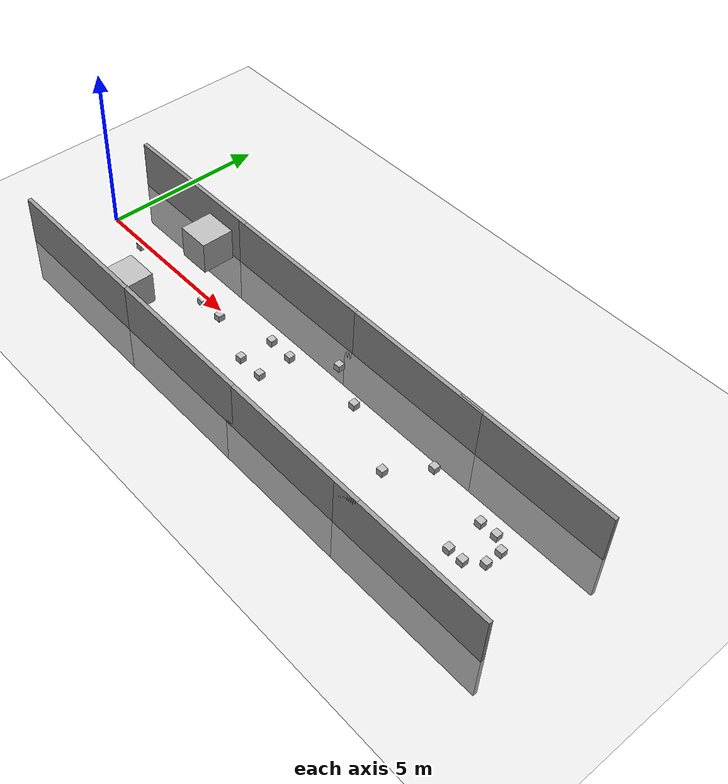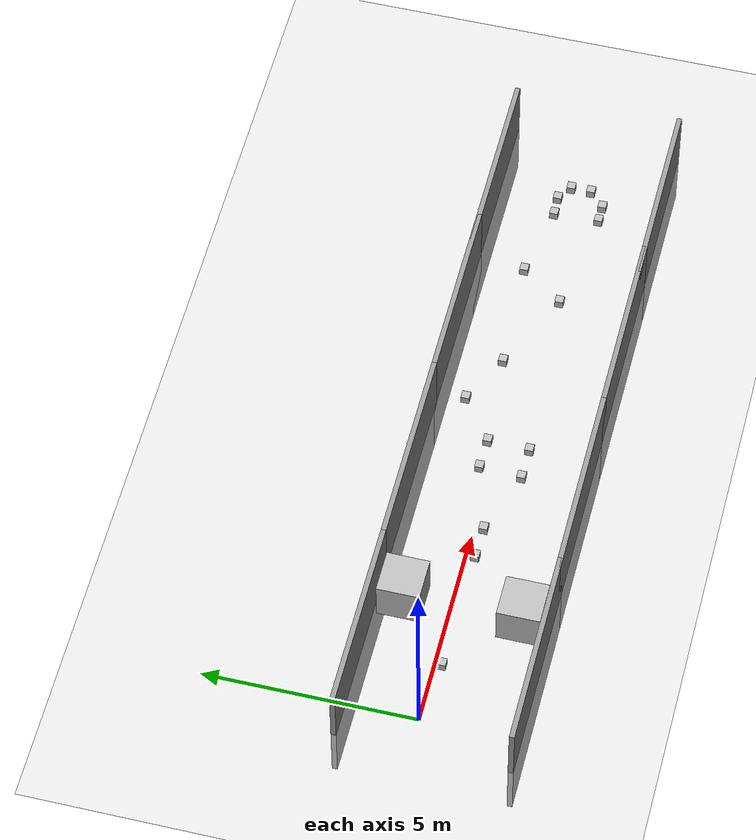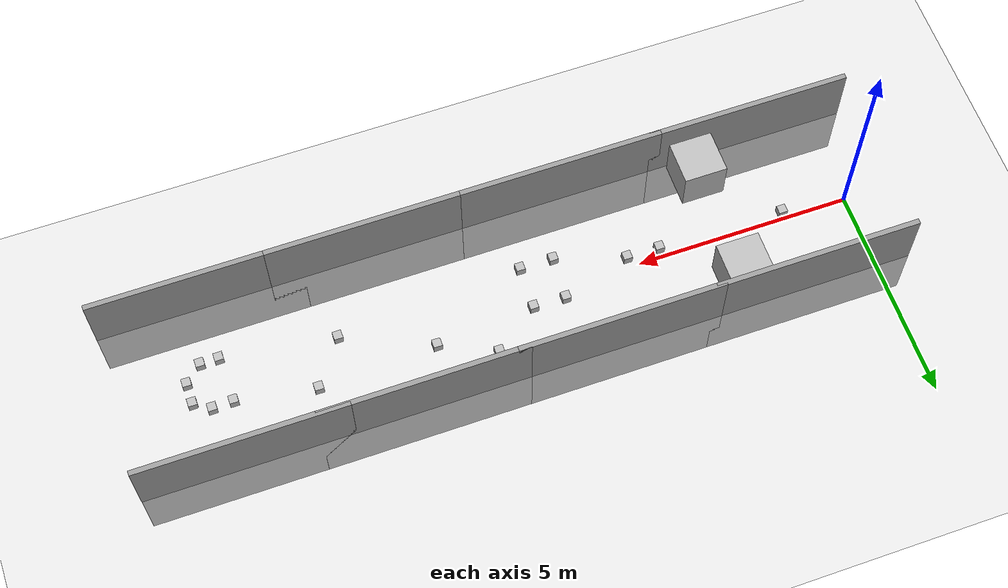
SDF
<sdf version="1.4">
 <world name="default">
  <physics type="ode">
   <gravity>0 0 -9.81</gravity>
   <ode>
    <solver><type>quick</type><iters>20</iters><sor>1</sor></solver>
    <constraints>
     <cfm>0</cfm>
     <erp>0.2</erp>
     <contact_max_correcting_vel>100</contact_max_correcting_vel>
     <contact_surface_layer>0</contact_surface_layer>
    </constraints>
   </ode>
   <real_time_update_rate>1000</real_time_update_rate>
   <max_step_size>0.001</max_step_size>
   <real_time_factor>1</real_time_factor>
  </physics>
  <light name="sun" type="directional">
   <pose>0 0 10 0 -0 0</pose>
   <diffuse>0.8 0.8 0.8 1</diffuse>
   <specular>0.2 0.2 0.2 1</specular>
   <attenuation>
    <range>1000</range>
    <constant>0.9</constant>
    <linear>0.01</linear>
    <quadratic>0.001</quadratic>
   </attenuation>
   <direction>-0.5 0.1 -0.9</direction>
  </light>
  <model name="ground_plane">
   <static>1</static>
   <link name="link">
    <collision name="collision">
     <geometry><plane><normal>0 0 1</normal><size>100 100</size></plane></geometry>
     <surface><friction><ode><mu>100</mu><mu2>50</mu2></ode></friction></surface>
    </collision>
    <visual name="visual">
     <cast_shadows>0</cast_shadows>
     <geometry><plane><normal>0 0 1</normal><size>100 100</size></plane></geometry>
     <material>
      <script><uri>file://media/materials/scripts/gazebo.material</uri><name>Gazebo/Grey</name></script>
     </material>
    </visual>
    <velocity_decay><linear>0</linear><angular>0</angular></velocity_decay>
   </link>
  </model>
  <scene><ambient>0.4 0.4 0.4 1</ambient><background>0.7 0.7 0.7 1</background><shadows>1</shadows></scene>
  <spherical_coordinates>
   <surface_model>EARTH_WGS84</surface_model>
   <latitude_deg>0</latitude_deg>
   <longitude_deg>0</longitude_deg>
   <elevation>0</elevation>
   <heading_deg>0</heading_deg>
  </spherical_coordinates>
  <model name="road_0">
   <static>1</static>
   <link name="Wall_0">
    <collision name="Wall_0_Collision">
     <geometry><box><size>4.76 0.12 3</size></box></geometry>
     <pose>2.58 -0.26 0 0 -0 0</pose>
    </collision>
    <visual name="Wall_0_Visual">
     <geometry><box><size>4.76 0.12 3</size></box></geometry>
     <material>
      <script><uri>file://media/materials/scripts/gazebo.material</uri><name>Gazebo/Grey</name></script>
     </material>
     <pose>2.58 -0.26 0 0 -0 0</pose>
    </visual>
    <velocity_decay><linear>0</linear><angular>0</angular></velocity_decay>
   </link>
   <pose>-1 -2 0 0 -0 0</pose>
  </model>
  <model name="road_1">
   <static>1</static>
   <link name="Wall_0">
    <collision name="Wall_0_Collision">
     <geometry><box><size>4.76 0.12 3</size></box></geometry>
     <pose>2.58 -0.26 0 0 -0 0</pose>
    </collision>
    <visual name="Wall_0_Visual">
     <geometry><box><size>4.76 0.12 3</size></box></geometry>
     <material>
      <script><uri>file://media/materials/scripts/gazebo.material</uri><name>Gazebo/Grey</name></script>
     </material>
     <pose>2.58 -0.26 0 0 -0 0</pose>
    </visual>
    <velocity_decay><linear>0</linear><angular>0</angular></velocity_decay>
   </link>
   <pose>-1 2 0 0 -0 0</pose>
  </model>
  <model name="road_2">
   <static>1</static>
   <link name="Wall_0">
    <collision name="Wall_0_Collision">
     <geometry><box><size>4.76 0.12 3</size></box></geometry>
     <pose>2.58 -0.26 0 0 -0 0</pose>
    </collision>
    <visual name="Wall_0_Visual">
     <geometry><box><size>4.76 0.12 3</size></box></geometry>
     <material>
      <script><uri>file://media/materials/scripts/gazebo.material</uri><name>Gazebo/Grey</name></script>
     </material>
     <pose>2.58 -0.26 0 0 -0 0</pose>
    </visual>
    <velocity_decay><linear>0</linear><angular>0</angular></velocity_decay>
   </link>
   <pose>3.53349 2 0 0 -0 0</pose>
  </model>
  <model name="road_3">
   <static>1</static>
   <link name="Wall_0">
    <collision name="Wall_0_Collision">
     <geometry><box><size>4.76 0.12 3</size></box></geometry>
     <pose>2.58 -0.26 0 0 -0 0</pose>
    </collision>
    <visual name="Wall_0_Visual">
     <geometry><box><size>4.76 0.12 3</size></box></geometry>
     <material>
      <script><uri>file://media/materials/scripts/gazebo.material</uri><name>Gazebo/Grey</name></script>
     </material>
     <pose>2.58 -0.26 0 0 -0 0</pose>
    </visual>
    <velocity_decay><linear>0</linear><angular>0</angular></velocity_decay>
   </link>
   <pose>3.50143 -2 0 0 -0 0</pose>
  </model>
  <model name="road_4">
   <static>1</static>
   <link name="Wall_0">
    <collision name="Wall_0_Collision">
     <geometry><box><size>4.76 0.12 3</size></box></geometry>
     <pose>2.58 -0.26 0 0 -0 0</pose>
    </collision>
    <visual name="Wall_0_Visual">
     <geometry><box><size>4.76 0.12 3</size></box></geometry>
     <material>
      <script><uri>file://media/materials/scripts/gazebo.material</uri><name>Gazebo/Grey</name></script>
     </material>
     <pose>2.58 -0.26 0 0 -0 0</pose>
    </visual>
    <velocity_decay><linear>0</linear><angular>0</angular></velocity_decay>
   </link>
   <pose>8 2 0 0 -0 0</pose>
  </model>
  <model name="road_5">
   <static>1</static>
   <link name="Wall_0">
    <collision name="Wall_0_Collision">
     <geometry><box><size>4.76 0.12 3</size></box></geometry>
     <pose>2.58 -0.26 0 0 -0 0</pose>
    </collision>
    <visual name="Wall_0_Visual">
     <geometry><box><size>4.76 0.12 3</size></box></geometry>
     <material>
      <script><uri>file://media/materials/scripts/gazebo.material</uri><name>Gazebo/Grey</name></script>
     </material>
     <pose>2.58 -0.26 0 0 -0 0</pose>
    </visual>
    <velocity_decay><linear>0</linear><angular>0</angular></velocity_decay>
   </link>
   <pose>8 -2 0 0 -0 0</pose>
  </model>
  <model name="road_6">
   <static>1</static>
   <link name="Wall_0">
    <collision name="Wall_0_Collision">
     <geometry><box><size>4.76 0.12 3</size></box></geometry>
     <pose>2.58 -0.26 0 0 -0 0</pose>
    </collision>
    <visual name="Wall_0_Visual">
     <geometry><box><size>4.76 0.12 3</size></box></geometry>
     <material>
      <script><uri>file://media/materials/scripts/gazebo.material</uri><name>Gazebo/Grey</name></script>
     </material>
     <pose>2.58 -0.26 0 0 -0 0</pose>
    </visual>
    <velocity_decay><linear>0</linear><angular>0</angular></velocity_decay>
   </link>
   <pose>12 2 0 0 -0 0</pose>
  </model>
  <model name="road_7">
   <static>1</static>
   <link name="Wall_0">
    <collision name="Wall_0_Collision">
     <geometry><box><size>4.76 0.12 3</size></box></geometry>
     <pose>2.58 -0.26 0 0 -0 0</pose>
    </collision>
    <visual name="Wall_0_Visual">
     <geometry><box><size>4.76 0.12 3</size></box></geometry>
     <material>
      <script><uri>file://media/materials/scripts/gazebo.material</uri><name>Gazebo/Grey</name></script>
     </material>
     <pose>2.58 -0.26 0 0 -0 0</pose>
    </visual>
    <velocity_decay><linear>0</linear><angular>0</angular></velocity_decay>
   </link>
   <pose>12 -2 0 0 -0 0</pose>
  </model>
  <model name="face">
   <static>0</static>
   <link name="face">
    <pose>0 0 0.5 0 -0 0</pose>
    <collision name="collision"><geometry><box><size>1 1 1</size></box></geometry></collision>
    <visual name="visual">
     <geometry><box><size>1 1 1</size></box></geometry>
     <material>
      <script>
       <uri>model://face/material/scripts</uri>
       <uri>model://face/material/textures</uri>
       <name>Custom/face</name>
      </script>
     </material>
    </visual>
    <velocity_decay><linear>0</linear><angular>0</angular></velocity_decay>
    <inertial>
     <inertia><ixx>1</ixx><ixy>0</ixy><ixz>0</ixz><iyy>1</iyy><iyz>0</iyz><izz>1</izz></inertia>
     <mass>1</mass>
    </inertial>
   </link>
   <pose>2.98685 1.10537 -1e-06 0 -2e-06 6.6e-05</pose>
  </model>
  <model name="face_0">
   <static>0</static>
   <link name="face">
    <pose>0 0 0.5 0 -0 0</pose>
    <collision name="collision"><geometry><box><size>1 1 1</size></box></geometry></collision>
    <visual name="visual">
     <geometry><box><size>1 1 1</size></box></geometry>
     <material>
      <script>
       <uri>model://face/material/scripts</uri>
       <uri>model://face/material/textures</uri>
       <name>Custom/face</name>
      </script>
     </material>
    </visual>
    <velocity_decay><linear>0</linear><angular>0</angular></velocity_decay>
    <inertial>
     <inertia><ixx>1</ixx><ixy>0</ixy><ixz>0</ixz><iyy>1</iyy><iyz>0</iyz><izz>1</izz></inertia>
     <mass>1</mass>
    </inertial>
   </link>
   <pose>3.01102 -1.63814 0 0 -0 4.2e-05</pose>
  </model>
  <model name="box_0">
   <static>0</static>
   <link name="box">
    <pose>0 0 0.5 0 -0 0</pose>
    <collision name="collision"><geometry><box><size>0.2 0.2 0.2</size></box></geometry></collision>
    <visual name="visual">
     <geometry><box><size>0.2 0.2 0.2</size></box></geometry>
     <material>
      <script>
       <uri>model://box/material/scripts</uri>
       <uri>model://box/material/textures</uri>
       <name>Custom/box</name>
      </script>
     </material>
    </visual>
    <velocity_decay><linear>0</linear><angular>0</angular></velocity_decay>
    <inertial>
     <inertia><ixx>1</ixx><ixy>0</ixy><ixz>0</ixz><iyy>1</iyy><iyz>0</iyz><izz>1</izz></inertia>
     <mass>1</mass>
    </inertial>
   </link>
   <pose>5.22513 -0.219511 -0.4 0 0 -0.000546</pose>
  </model>
  <model name="box_2">
   <static>0</static>
   <link name="box">
    <pose>0 0 0.5 0 -0 0</pose>
    <collision name="collision"><geometry><box><size>0.2 0.2 0.2</size></box></geometry></collision>
    <visual name="visual">
     <geometry><box><size>0.2 0.2 0.2</size></box></geometry>
     <material>
      <script>
       <uri>model://box/material/scripts</uri>
       <uri>model://box/material/textures</uri>
       <name>Custom/box</name>
      </script>
     </material>
    </visual>
    <velocity_decay><linear>0</linear><angular>0</angular></velocity_decay>
    <inertial>
     <inertia><ixx>1</ixx><ixy>0</ixy><ixz>0</ixz><iyy>1</iyy><iyz>0</iyz><izz>1</izz></inertia>
     <mass>1</mass>
    </inertial>
   </link>
   <pose>8.68917 1.0331 -0.4 -1e-06 -1e-06 -0.000518</pose>
  </model>
  <model name="box_3">
   <static>0</static>
   <link name="box">
    <pose>0 0 0.5 0 -0 0</pose>
    <collision name="collision"><geometry><box><size>0.2 0.2 0.2</size></box></geometry></collision>
    <visual name="visual">
     <geometry><box><size>0.2 0.2 0.2</size></box></geometry>
     <material>
      <script>
       <uri>model://box/material/scripts</uri>
       <uri>model://box/material/textures</uri>
       <name>Custom/box</name>
      </script>
     </material>
    </visual>
    <velocity_decay><linear>0</linear><angular>0</angular></velocity_decay>
    <inertial>
     <inertia><ixx>1</ixx><ixy>0</ixy><ixz>0</ixz><iyy>1</iyy><iyz>0</iyz><izz>1</izz></inertia>
     <mass>1</mass>
    </inertial>
   </link>
   <pose>9.93028 0.431484 -0.4 1e-06 -2.06795e-25 -0.000606</pose>
  </model>
  <model name="box_4">
   <static>0</static>
   <link name="box">
    <pose>0 0 0.5 0 -0 0</pose>
    <collision name="collision"><geometry><box><size>0.2 0.2 0.2</size></box></geometry></collision>
    <visual name="visual">
     <geometry><box><size>0.2 0.2 0.2</size></box></geometry>
     <material>
      <script>
       <uri>model://box/material/scripts</uri>
       <uri>model://box/material/textures</uri>
       <name>Custom/box</name>
      </script>
     </material>
    </visual>
    <velocity_decay><linear>0</linear><angular>0</angular></velocity_decay>
    <inertial>
     <inertia><ixx>1</ixx><ixy>0</ixy><ixz>0</ixz><iyy>1</iyy><iyz>0</iyz><izz>1</izz></inertia>
     <mass>1</mass>
    </inertial>
   </link>
   <pose>14.5007 0.238052 -0.4 0 0 -0.000511</pose>
  </model>
  <model name="box_5">
   <static>0</static>
   <link name="box">
    <pose>0 0 0.5 0 -0 0</pose>
    <collision name="collision"><geometry><box><size>0.2 0.2 0.2</size></box></geometry></collision>
    <visual name="visual">
     <geometry><box><size>0.2 0.2 0.2</size></box></geometry>
     <material>
      <script>
       <uri>model://box/material/scripts</uri>
       <uri>model://box/material/textures</uri>
       <name>Custom/box</name>
      </script>
     </material>
    </visual>
    <velocity_decay><linear>0</linear><angular>0</angular></velocity_decay>
    <inertial>
     <inertia><ixx>1</ixx><ixy>0</ixy><ixz>0</ixz><iyy>1</iyy><iyz>0</iyz><izz>1</izz></inertia>
     <mass>1</mass>
    </inertial>
   </link>
   <pose>14.5397 -0.846051 -0.4 3e-06 3e-06 -0.000555</pose>
  </model>
  <model name="box_6">
   <static>0</static>
   <link name="box">
    <pose>0 0 0.5 0 -0 0</pose>
    <collision name="collision"><geometry><box><size>0.2 0.2 0.2</size></box></geometry></collision>
    <visual name="visual">
     <geometry><box><size>0.2 0.2 0.2</size></box></geometry>
     <material>
      <script>
       <uri>model://box/material/scripts</uri>
       <uri>model://box/material/textures</uri>
       <name>Custom/box</name>
      </script>
     </material>
    </visual>
    <velocity_decay><linear>0</linear><angular>0</angular></velocity_decay>
    <inertial>
     <inertia><ixx>1</ixx><ixy>0</ixy><ixz>0</ixz><iyy>1</iyy><iyz>0</iyz><izz>1</izz></inertia>
     <mass>1</mass>
    </inertial>
   </link>
   <pose>15.3627 0.007683 -0.4 0 1e-06 -0.000495</pose>
  </model>
  <model name="box_7">
   <static>0</static>
   <link name="box">
    <pose>0 0 0.5 0 -0 0</pose>
    <collision name="collision"><geometry><box><size>0.2 0.2 0.2</size></box></geometry></collision>
    <visual name="visual">
     <geometry><box><size>0.2 0.2 0.2</size></box></geometry>
     <material>
      <script>
       <uri>model://box/material/scripts</uri>
       <uri>model://box/material/textures</uri>
       <name>Custom/box</name>
      </script>
     </material>
    </visual>
    <velocity_decay><linear>0</linear><angular>0</angular></velocity_decay>
    <inertial>
     <inertia><ixx>1</ixx><ixy>0</ixy><ixz>0</ixz><iyy>1</iyy><iyz>0</iyz><izz>1</izz></inertia>
     <mass>1</mass>
    </inertial>
   </link>
   <pose>15.3605 -0.479513 -0.4 1e-06 -2e-06 -0.000631</pose>
  </model>
  <model name="box_8">
   <static>0</static>
   <link name="box">
    <pose>0 0 0.5 0 -0 0</pose>
    <collision name="collision"><geometry><box><size>0.2 0.2 0.2</size></box></geometry></collision>
    <visual name="visual">
     <geometry><box><size>0.2 0.2 0.2</size></box></geometry>
     <material>
      <script>
       <uri>model://box/material/scripts</uri>
       <uri>model://box/material/textures</uri>
       <name>Custom/box</name>
      </script>
     </material>
    </visual>
    <velocity_decay><linear>0</linear><angular>0</angular></velocity_decay>
    <inertial>
     <inertia><ixx>1</ixx><ixy>0</ixy><ixz>0</ixz><iyy>1</iyy><iyz>0</iyz><izz>1</izz></inertia>
     <mass>1</mass>
    </inertial>
   </link>
   <pose>12.6724 0.555136 -0.399998 8e-06 1.2e-05 -0.000518</pose>
  </model>
  <model name="box_9">
   <static>0</static>
   <link name="box">
    <pose>0 0 0.5 0 -0 0</pose>
    <collision name="collision"><geometry><box><size>0.2 0.2 0.2</size></box></geometry></collision>
    <visual name="visual">
     <geometry><box><size>0.2 0.2 0.2</size></box></geometry>
     <material>
      <script>
       <uri>model://box/material/scripts</uri>
       <uri>model://box/material/textures</uri>
       <name>Custom/box</name>
      </script>
     </material>
    </visual>
    <velocity_decay><linear>0</linear><angular>0</angular></velocity_decay>
    <inertial>
     <inertia><ixx>1</ixx><ixy>0</ixy><ixz>0</ixz><iyy>1</iyy><iyz>0</iyz><izz>1</izz></inertia>
     <mass>1</mass>
    </inertial>
   </link>
   <pose>11.9297 -0.474437 -0.4 -0 -0 -0.000565</pose>
  </model>
  <model name="box_11">
   <static>0</static>
   <link name="box">
    <pose>0 0 0.5 0 -0 0</pose>
    <collision name="collision"><geometry><box><size>0.2 0.2 0.2</size></box></geometry></collision>
    <visual name="visual">
     <geometry><box><size>0.2 0.2 0.2</size></box></geometry>
     <material>
      <script>
       <uri>model://box/material/scripts</uri>
       <uri>model://box/material/textures</uri>
       <name>Custom/box</name>
      </script>
     </material>
    </visual>
    <velocity_decay><linear>0</linear><angular>0</angular></velocity_decay>
    <inertial>
     <inertia><ixx>1</ixx><ixy>0</ixy><ixz>0</ixz><iyy>1</iyy><iyz>0</iyz><izz>1</izz></inertia>
     <mass>1</mass>
    </inertial>
   </link>
   <pose>14.9857 0.257533 -0.4 0 0 -0.00057</pose>
  </model>
  <model name="box_12">
   <static>0</static>
   <link name="box">
    <pose>0 0 0.5 0 -0 0</pose>
    <collision name="collision"><geometry><box><size>0.2 0.2 0.2</size></box></geometry></collision>
    <visual name="visual">
     <geometry><box><size>0.2 0.2 0.2</size></box></geometry>
     <material>
      <script>
       <uri>model://box/material/scripts</uri>
       <uri>model://box/material/textures</uri>
       <name>Custom/box</name>
      </script>
     </material>
    </visual>
    <velocity_decay><linear>0</linear><angular>0</angular></velocity_decay>
    <inertial>
     <inertia><ixx>1</ixx><ixy>0</ixy><ixz>0</ixz><iyy>1</iyy><iyz>0</iyz><izz>1</izz></inertia>
     <mass>1</mass>
    </inertial>
   </link>
   <pose>14.9653 -0.844684 -0.4 -1e-06 -2e-06 -0.000584</pose>
  </model>
  <model name="box_13">
   <static>0</static>
   <link name="box">
    <pose>0 0 0.5 0 -0 0</pose>
    <collision name="collision"><geometry><box><size>0.2 0.2 0.2</size></box></geometry></collision>
    <visual name="visual">
     <geometry><box><size>0.2 0.2 0.2</size></box></geometry>
     <material>
      <script>
       <uri>model://box/material/scripts</uri>
       <uri>model://box/material/textures</uri>
       <name>Custom/box</name>
      </script>
     </material>
    </visual>
    <velocity_decay><linear>0</linear><angular>0</angular></velocity_decay>
    <inertial>
     <inertia><ixx>1</ixx><ixy>0</ixy><ixz>0</ixz><iyy>1</iyy><iyz>0</iyz><izz>1</izz></inertia>
     <mass>1</mass>
    </inertial>
   </link>
   <pose>7.62089 0.252464 -0.4 -1e-06 -2e-06 -0.000575</pose>
  </model>
  <model name="box_14">
   <static>0</static>
   <link name="box">
    <pose>0 0 0.5 0 -0 0</pose>
    <collision name="collision"><geometry><box><size>0.2 0.2 0.2</size></box></geometry></collision>
    <visual name="visual">
     <geometry><box><size>0.2 0.2 0.2</size></box></geometry>
     <material>
      <script>
       <uri>model://box/material/scripts</uri>
       <uri>model://box/material/textures</uri>
       <name>Custom/box</name>
      </script>
     </material>
    </visual>
    <velocity_decay><linear>0</linear><angular>0</angular></velocity_decay>
    <inertial>
     <inertia><ixx>1</ixx><ixy>0</ixy><ixz>0</ixz><iyy>1</iyy><iyz>0</iyz><izz>1</izz></inertia>
     <mass>1</mass>
    </inertial>
   </link>
   <pose>7.59112 -0.743476 -0.399999 -3e-06 -4e-06 -0.000533</pose>
  </model>
  <model name="box_15">
   <static>0</static>
   <link name="box">
    <pose>0 0 0.5 0 -0 0</pose>
    <collision name="collision"><geometry><box><size>0.2 0.2 0.2</size></box></geometry></collision>
    <visual name="visual">
     <geometry><box><size>0.2 0.2 0.2</size></box></geometry>
     <material>
      <script>
       <uri>model://box/material/scripts</uri>
       <uri>model://box/material/textures</uri>
       <name>Custom/box</name>
      </script>
     </material>
    </visual>
    <velocity_decay><linear>0</linear><angular>0</angular></velocity_decay>
    <inertial>
     <inertia><ixx>1</ixx><ixy>0</ixy><ixz>0</ixz><iyy>1</iyy><iyz>0</iyz><izz>1</izz></inertia>
     <mass>1</mass>
    </inertial>
   </link>
   <pose>6.86366 0.26875 -0.4 0 -5e-06 -0.000532</pose>
  </model>
  <model name="box_16">
   <static>0</static>
   <link name="box">
    <pose>0 0 0.5 0 -0 0</pose>
    <collision name="collision"><geometry><box><size>0.2 0.2 0.2</size></box></geometry></collision>
    <visual name="visual">
     <geometry><box><size>0.2 0.2 0.2</size></box></geometry>
     <material>
      <script>
       <uri>model://box/material/scripts</uri>
       <uri>model://box/material/textures</uri>
       <name>Custom/box</name>
      </script>
     </material>
    </visual>
    <velocity_decay><linear>0</linear><angular>0</angular></velocity_decay>
    <inertial>
     <inertia><ixx>1</ixx><ixy>0</ixy><ixz>0</ixz><iyy>1</iyy><iyz>0</iyz><izz>1</izz></inertia>
     <mass>1</mass>
    </inertial>
   </link>
   <pose>6.80913 -0.736709 -0.4 2.06795e-25 3e-06 -0.000547</pose>
  </model>
  <model name="box_17">
   <static>0</static>
   <link name="box">
    <pose>0 0 0.5 0 -0 0</pose>
    <collision name="collision"><geometry><box><size>0.2 0.2 0.2</size></box></geometry></collision>
    <visual name="visual">
     <geometry><box><size>0.2 0.2 0.2</size></box></geometry>
     <material>
      <script>
       <uri>model://box/material/scripts</uri>
       <uri>model://box/material/textures</uri>
       <name>Custom/box</name>
      </script>
     </material>
    </visual>
    <velocity_decay><linear>0</linear><angular>0</angular></velocity_decay>
    <inertial>
     <inertia><ixx>1</ixx><ixy>0</ixy><ixz>0</ixz><iyy>1</iyy><iyz>0</iyz><izz>1</izz></inertia>
     <mass>1</mass>
    </inertial>
   </link>
   <pose>1.48015 -0.159128 -0.399999 1e-05 -0 -0.000592</pose>
  </model>
  <model name="box_18">
   <static>0</static>
   <link name="box">
    <pose>0 0 0.5 0 -0 0</pose>
    <collision name="collision"><geometry><box><size>0.2 0.2 0.2</size></box></geometry></collision>
    <visual name="visual">
     <geometry><box><size>0.2 0.2 0.2</size></box></geometry>
     <material>
      <script>
       <uri>model://box/material/scripts</uri>
       <uri>model://box/material/textures</uri>
       <name>Custom/box</name>
      </script>
     </material>
    </visual>
    <velocity_decay><linear>0</linear><angular>0</angular></velocity_decay>
    <inertial>
     <inertia><ixx>1</ixx><ixy>0</ixy><ixz>0</ixz><iyy>1</iyy><iyz>0</iyz><izz>1</izz></inertia>
     <mass>1</mass>
    </inertial>
   </link>
   <pose>4.45308 -0.210831 -0.4 0 1e-06 -0.000579</pose>
  </model>
 </world>
</sdf>
